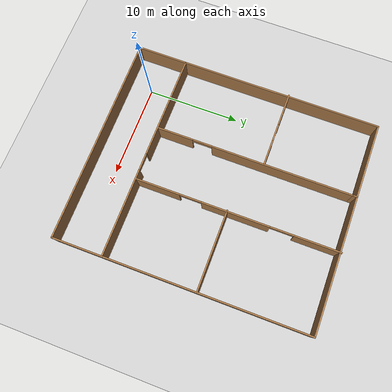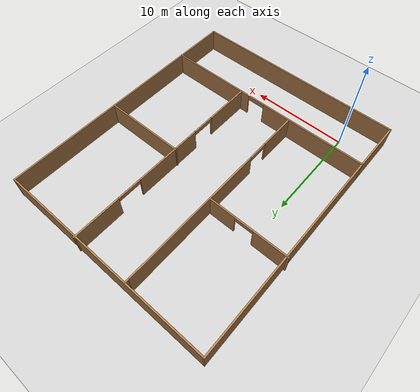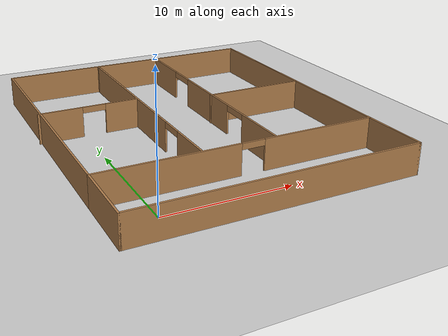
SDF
<sdf version="1.7">
 <world name="default">
  <light name="sun" type="directional">
   <pose>0 0 10 0 -0 0</pose>
   <diffuse>0.8 0.8 0.8 1</diffuse>
   <specular>0.2 0.2 0.2 1</specular>
   <attenuation>
    <range>1000</range>
    <constant>0.9</constant>
    <linear>0.01</linear>
    <quadratic>0.001</quadratic>
   </attenuation>
   <direction>-0.5 0.1 -0.9</direction>
   <spot><inner_angle>0</inner_angle><outer_angle>0</outer_angle><falloff>0</falloff></spot>
  </light>
  <model name="ground_plane">
   <static>1</static>
   <link name="link">
    <collision name="collision">
     <geometry><plane><normal>0 0 1</normal><size>100 100</size></plane></geometry>
     <surface>
      <contact><collide_bitmask>65535</collide_bitmask></contact>
      <friction><ode><mu>100</mu><mu2>50</mu2></ode></friction>
     </surface>
    </collision>
    <visual name="visual">
     <cast_shadows>0</cast_shadows>
     <geometry><plane><normal>0 0 1</normal><size>100 100</size></plane></geometry>
     <material>
      <script><uri>file://media/materials/scripts/gazebo.material</uri><name>Gazebo/Grey</name></script>
     </material>
    </visual>
   </link>
  </model>
  <gravity>0 0 -9.8</gravity>
  <magnetic_field>6e-06 2.3e-05 -4.2e-05</magnetic_field>
  <atmosphere type="adiabatic"/>
  <physics type="ode">
   <max_step_size>0.001</max_step_size>
   <real_time_factor>1</real_time_factor>
   <real_time_update_rate>1000</real_time_update_rate>
  </physics>
  <scene><ambient>0.4 0.4 0.4 1</ambient><background>0.7 0.7 0.7 1</background><shadows>1</shadows></scene>
  <audio><device>default</device></audio>
  <spherical_coordinates>
   <surface_model>EARTH_WGS84</surface_model>
   <latitude_deg>0</latitude_deg>
   <longitude_deg>0</longitude_deg>
   <elevation>0</elevation>
   <heading_deg>0</heading_deg>
  </spherical_coordinates>
  <model name="House_data">
   <pose>7.59978 11.0705 0 0 -0 0</pose>
   <link name="Wall_0">
    <collision name="Wall_0_Collision">
     <geometry><box><size>22.5 0.15 2.5</size></box></geometry>
     <pose>0 0 1.25 0 -0 0</pose>
    </collision>
    <visual name="Wall_0_Visual">
     <pose>0 0 1.25 0 -0 0</pose>
     <geometry><box><size>22.5 0.15 2.5</size></box></geometry>
     <material>
      <script><uri>file://media/materials/scripts/gazebo.material</uri><name>Gazebo/Wood</name></script>
      <ambient>1 1 1 1</ambient>
     </material>
     <meta><layer>0</layer></meta>
    </visual>
    <pose>0.081418 -13.5311 0 0 -0 0</pose>
   </link>
   <link name="Wall_10">
    <collision name="Wall_10_Collision">
     <geometry><box><size>21.75 0.15 2.5</size></box></geometry>
     <pose>0 0 1.25 0 -0 0</pose>
    </collision>
    <visual name="Wall_10_Visual">
     <pose>0 0 1.25 0 -0 0</pose>
     <geometry><box><size>21.75 0.15 2.5</size></box></geometry>
     <material>
      <script><uri>file://media/materials/scripts/gazebo.material</uri><name>Gazebo/Wood</name></script>
      <ambient>1 1 1 1</ambient>
     </material>
     <meta><layer>0</layer></meta>
    </visual>
    <pose>-11.0936 2.61894 0 0 -0 1.5708</pose>
   </link>
   <link name="Wall_15">
    <pose>2.87496 2.73106 0 0 -0 -1.5708</pose>
    <visual name="Wall_15_Visual_0">
     <pose>-8.4237 0 1.25 0 -0 0</pose>
     <geometry><box><size>4.90259 0.15 2.5</size></box></geometry>
     <material>
      <script><uri>file://media/materials/scripts/gazebo.material</uri><name>Gazebo/Wood</name></script>
      <ambient>1 1 1 1</ambient>
     </material>
     <meta><layer>0</layer></meta>
    </visual>
    <collision name="Wall_15_Collision_0">
     <geometry><box><size>4.90259 0.15 2.5</size></box></geometry>
     <pose>-8.4237 0 1.25 0 -0 0</pose>
    </collision>
    <visual name="Wall_15_Visual_1">
     <pose>0.163404 0 1.25 0 -0 0</pose>
     <geometry><box><size>7.24324 0.15 2.5</size></box></geometry>
     <material>
      <script><uri>file://media/materials/scripts/gazebo.material</uri><name>Gazebo/Wood</name></script>
      <ambient>1 1 1 1</ambient>
     </material>
     <meta><layer>0</layer></meta>
    </visual>
    <collision name="Wall_15_Collision_1">
     <geometry><box><size>7.24324 0.15 2.5</size></box></geometry>
     <pose>0.163404 0 1.25 0 -0 0</pose>
    </collision>
    <visual name="Wall_15_Visual_2">
     <pose>8.49743 0 1.25 0 -0 0</pose>
     <geometry><box><size>4.75514 0.15 2.5</size></box></geometry>
     <material>
      <script><uri>file://media/materials/scripts/gazebo.material</uri><name>Gazebo/Wood</name></script>
      <ambient>1 1 1 1</ambient>
     </material>
     <meta><layer>0</layer></meta>
    </visual>
    <collision name="Wall_15_Collision_2">
     <geometry><box><size>4.75514 0.15 2.5</size></box></geometry>
     <pose>8.49743 0 1.25 0 -0 0</pose>
    </collision>
    <visual name="Wall_15_Visual_3">
     <pose>-4.71531 0 2.25 0 -0 0</pose>
     <geometry><box><size>2.51419 0.15 0.5</size></box></geometry>
     <material>
      <script><uri>file://media/materials/scripts/gazebo.material</uri><name>Gazebo/Wood</name></script>
      <ambient>1 1 1 1</ambient>
     </material>
     <meta><layer>0</layer></meta>
    </visual>
    <collision name="Wall_15_Collision_3">
     <geometry><box><size>2.51419 0.15 0.5</size></box></geometry>
     <pose>-4.71531 0 2.25 0 -0 0</pose>
    </collision>
    <visual name="Wall_15_Visual_4">
     <pose>4.95244 0 2.25 0 -0 0</pose>
     <geometry><box><size>2.33483 0.15 0.5</size></box></geometry>
     <material>
      <script><uri>file://media/materials/scripts/gazebo.material</uri><name>Gazebo/Wood</name></script>
      <ambient>1 1 1 1</ambient>
     </material>
     <meta><layer>0</layer></meta>
    </visual>
    <collision name="Wall_15_Collision_4">
     <geometry><box><size>2.33483 0.15 0.5</size></box></geometry>
     <pose>4.95244 0 2.25 0 -0 0</pose>
    </collision>
   </link>
   <link name="Wall_19">
    <collision name="Wall_19_Collision">
     <geometry><box><size>8.5 0.15 2.5</size></box></geometry>
     <pose>0 0 1.25 0 -0 0</pose>
    </collision>
    <visual name="Wall_19_Visual">
     <pose>0 0 1.25 0 -0 0</pose>
     <geometry><box><size>8.5 0.15 2.5</size></box></geometry>
     <material>
      <script><uri>file://media/materials/scripts/gazebo.material</uri><name>Gazebo/Wood</name></script>
      <ambient>1 1 1 1</ambient>
     </material>
     <meta><layer>0</layer></meta>
    </visual>
    <pose>6.97044 1.68295 0 0 -0 0</pose>
   </link>
   <link name="Wall_21">
    <pose>-3.03266 2.47443 0 0 -0 1.5708</pose>
    <visual name="Wall_21_Visual_0">
     <pose>-8.68195 0 1.25 0 -0 0</pose>
     <geometry><box><size>3.8861 0.15 2.5</size></box></geometry>
     <material>
      <script><uri>file://media/materials/scripts/gazebo.material</uri><name>Gazebo/Wood</name></script>
      <ambient>1 1 1 1</ambient>
     </material>
     <meta><layer>0</layer></meta>
    </visual>
    <collision name="Wall_21_Collision_0">
     <geometry><box><size>3.8861 0.15 2.5</size></box></geometry>
     <pose>-8.68195 0 1.25 0 -0 0</pose>
    </collision>
    <visual name="Wall_21_Visual_1">
     <pose>3.00833 0 1.25 0 -0 0</pose>
     <geometry><box><size>15.2333 0.15 2.5</size></box></geometry>
     <material>
      <script><uri>file://media/materials/scripts/gazebo.material</uri><name>Gazebo/Wood</name></script>
      <ambient>1 1 1 1</ambient>
     </material>
     <meta><layer>0</layer></meta>
    </visual>
    <collision name="Wall_21_Collision_1">
     <geometry><box><size>15.2333 0.15 2.5</size></box></geometry>
     <pose>3.00833 0 1.25 0 -0 0</pose>
    </collision>
    <visual name="Wall_21_Visual_2">
     <pose>-5.67362 0 2.25 0 -0 0</pose>
     <geometry><box><size>2.13056 0.15 0.5</size></box></geometry>
     <material>
      <script><uri>file://media/materials/scripts/gazebo.material</uri><name>Gazebo/Wood</name></script>
      <ambient>1 1 1 1</ambient>
     </material>
     <meta><layer>0</layer></meta>
    </visual>
    <collision name="Wall_21_Collision_2">
     <geometry><box><size>2.13056 0.15 0.5</size></box></geometry>
     <pose>-5.67362 0 2.25 0 -0 0</pose>
    </collision>
   </link>
   <link name="Wall_22">
    <collision name="Wall_22_Collision">
     <geometry><box><size>0.5 0.15 2.5</size></box></geometry>
     <pose>0 0 1.25 0 -0 0</pose>
    </collision>
    <visual name="Wall_22_Visual">
     <pose>0 0 1.25 0 -0 0</pose>
     <geometry><box><size>0.5 0.15 2.5</size></box></geometry>
     <material>
      <script><uri>file://media/materials/scripts/gazebo.material</uri><name>Gazebo/Wood</name></script>
      <ambient>1 1 1 1</ambient>
     </material>
     <meta><layer>0</layer></meta>
    </visual>
    <pose>-3.03266 13.1994 0 0 -0 1.5708</pose>
   </link>
   <link name="Wall_24">
    <pose>-7.20642 3.55736 0 0 -0 3.14159</pose>
    <visual name="Wall_24_Visual_0">
     <pose>-2.75634 0 1.25 0 -0 0</pose>
     <geometry><box><size>2.73732 0.15 2.5</size></box></geometry>
     <material>
      <script><uri>file://media/materials/scripts/gazebo.material</uri><name>Gazebo/Wood</name></script>
      <ambient>1 1 1 1</ambient>
     </material>
     <meta><layer>0</layer></meta>
    </visual>
    <collision name="Wall_24_Collision_0">
     <geometry><box><size>2.73732 0.15 2.5</size></box></geometry>
     <pose>-2.75634 0 1.25 0 -0 0</pose>
    </collision>
    <visual name="Wall_24_Visual_1">
     <pose>2.32085 0 1.25 0 -0 0</pose>
     <geometry><box><size>3.60829 0.15 2.5</size></box></geometry>
     <material>
      <script><uri>file://media/materials/scripts/gazebo.material</uri><name>Gazebo/Wood</name></script>
      <ambient>1 1 1 1</ambient>
     </material>
     <meta><layer>0</layer></meta>
    </visual>
    <collision name="Wall_24_Collision_1">
     <geometry><box><size>3.60829 0.15 2.5</size></box></geometry>
     <pose>2.32085 0 1.25 0 -0 0</pose>
    </collision>
    <visual name="Wall_24_Visual_2">
     <pose>-0.435487 0 2.25 0 -0 0</pose>
     <geometry><box><size>1.90438 0.15 0.5</size></box></geometry>
     <material>
      <script><uri>file://media/materials/scripts/gazebo.material</uri><name>Gazebo/Wood</name></script>
      <ambient>1 1 1 1</ambient>
     </material>
     <meta><layer>0</layer></meta>
    </visual>
    <collision name="Wall_24_Collision_2">
     <geometry><box><size>1.90438 0.15 0.5</size></box></geometry>
     <pose>-0.435487 0 2.25 0 -0 0</pose>
    </collision>
   </link>
   <link name="Wall_3">
    <collision name="Wall_3_Collision">
     <geometry><box><size>5.5 0.15 2.5</size></box></geometry>
     <pose>0 0 1.25 0 -0 0</pose>
    </collision>
    <visual name="Wall_3_Visual">
     <pose>0 0 1.25 0 -0 0</pose>
     <geometry><box><size>5.5 0.15 2.5</size></box></geometry>
     <material>
      <script><uri>file://media/materials/scripts/gazebo.material</uri><name>Gazebo/Wood</name></script>
      <ambient>1 1 1 1</ambient>
     </material>
     <meta><layer>0</layer></meta>
    </visual>
    <pose>11.2564 -10.8561 0 0 -0 1.5708</pose>
   </link>
   <link name="Wall_4">
    <pose>0.081418 -8.18106 0 0 -0 3.14159</pose>
    <visual name="Wall_4_Visual_0">
     <pose>-6.53646 0 1.25 0 -0 0</pose>
     <geometry><box><size>9.42707 0.15 2.5</size></box></geometry>
     <material>
      <script><uri>file://media/materials/scripts/gazebo.material</uri><name>Gazebo/Wood</name></script>
      <ambient>1 1 1 1</ambient>
     </material>
     <meta><layer>0</layer></meta>
    </visual>
    <collision name="Wall_4_Collision_0">
     <geometry><box><size>9.42707 0.15 2.5</size></box></geometry>
     <pose>-6.53646 0 1.25 0 -0 0</pose>
    </collision>
    <visual name="Wall_4_Visual_1">
     <pose>5.65 0 1.25 0 -0 0</pose>
     <geometry><box><size>11.2 0.15 2.5</size></box></geometry>
     <material>
      <script><uri>file://media/materials/scripts/gazebo.material</uri><name>Gazebo/Wood</name></script>
      <ambient>1 1 1 1</ambient>
     </material>
     <meta><layer>0</layer></meta>
    </visual>
    <collision name="Wall_4_Collision_1">
     <geometry><box><size>11.2 0.15 2.5</size></box></geometry>
     <pose>5.65 0 1.25 0 -0 0</pose>
    </collision>
    <visual name="Wall_4_Visual_2">
     <pose>-0.886462 0 2.25 0 -0 0</pose>
     <geometry><box><size>1.87294 0.15 0.5</size></box></geometry>
     <material>
      <script><uri>file://media/materials/scripts/gazebo.material</uri><name>Gazebo/Wood</name></script>
      <ambient>1 1 1 1</ambient>
     </material>
     <meta><layer>0</layer></meta>
    </visual>
    <collision name="Wall_4_Collision_2">
     <geometry><box><size>1.87294 0.15 0.5</size></box></geometry>
     <pose>-0.886462 0 2.25 0 -0 0</pose>
    </collision>
   </link>
   <link name="Wall_5">
    <collision name="Wall_5_Collision">
     <geometry><box><size>5.5 0.15 2.5</size></box></geometry>
     <pose>0 0 1.25 0 -0 0</pose>
    </collision>
    <visual name="Wall_5_Visual">
     <pose>0 0 1.25 0 -0 0</pose>
     <geometry><box><size>5.5 0.15 2.5</size></box></geometry>
     <material>
      <script><uri>file://media/materials/scripts/gazebo.material</uri><name>Gazebo/Wood</name></script>
      <ambient>1 1 1 1</ambient>
     </material>
     <meta><layer>0</layer></meta>
    </visual>
    <pose>-11.0936 -10.8561 0 0 -0 -1.5708</pose>
   </link>
   <link name="Wall_7">
    <collision name="Wall_7_Collision">
     <geometry><box><size>21.75 0.15 2.5</size></box></geometry>
     <pose>0 0 1.25 0 -0 0</pose>
    </collision>
    <visual name="Wall_7_Visual">
     <pose>0 0 1.25 0 -0 0</pose>
     <geometry><box><size>21.75 0.15 2.5</size></box></geometry>
     <material>
      <script><uri>file://media/materials/scripts/gazebo.material</uri><name>Gazebo/Wood</name></script>
      <ambient>1 1 1 1</ambient>
     </material>
     <meta><layer>0</layer></meta>
    </visual>
    <pose>11.2564 2.61894 0 0 -0 1.5708</pose>
   </link>
   <link name="Wall_8">
    <collision name="Wall_8_Collision">
     <geometry><box><size>22.5 0.15 2.5</size></box></geometry>
     <pose>0 0 1.25 0 -0 0</pose>
    </collision>
    <visual name="Wall_8_Visual">
     <pose>0 0 1.25 0 -0 0</pose>
     <geometry><box><size>22.5 0.15 2.5</size></box></geometry>
     <material>
      <script><uri>file://media/materials/scripts/gazebo.material</uri><name>Gazebo/Wood</name></script>
      <ambient>1 1 1 1</ambient>
     </material>
     <meta><layer>0</layer></meta>
    </visual>
    <pose>0.081418 13.4189 0 0 -0 3.14159</pose>
   </link>
   <static>1</static>
  </model>
 </world>
</sdf>
